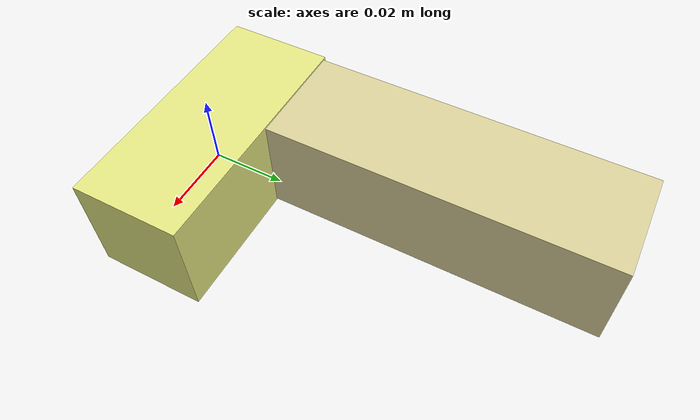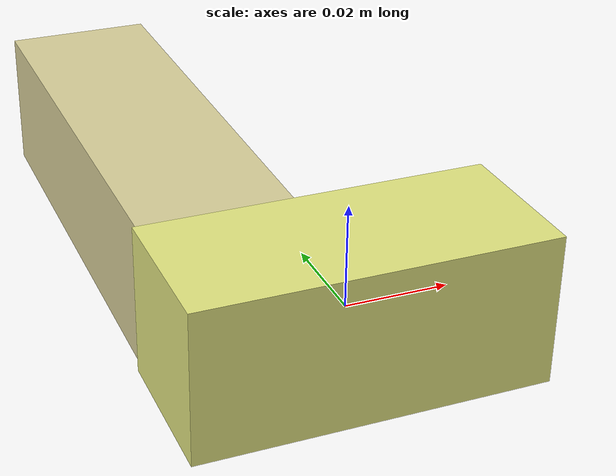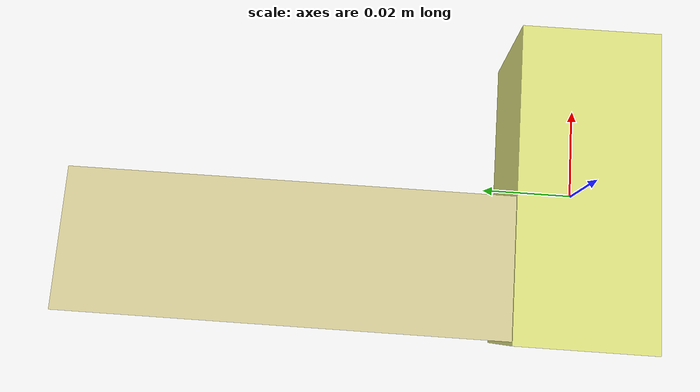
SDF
<sdf version="1.4"><world name="default"><model name="object0"><link name="link1"><pose>0 0 0 0 0 0</pose><inertial><pose>0 0 0 0 0 0</pose><mass>0.03701553642658761</mass><inertia><ixx>5.552330463988141e-06</ixx><ixy>0</ixy><iyy>1.7270002366478147e-05</iyy><ixz>0</ixz><iyz>0</iyz><izz>1.7270002366478147e-05</izz></inertia></inertial><visual name="link1_visual"><pose>0 0  0 0 0 0</pose><geometry><box><size>0.06854728967886595 0.03 0.03</size></box></geometry><material><diffuse>0.8967152891674692 0.9108557906641186 0.5101243835853013 1</diffuse></material></visual><collision><pose>0 0  0 0 0 0</pose><geometry><box><size>0.06854728967886595 0.03 0.03</size></box></geometry></collision></link><link name="link2"><pose>-0.018467951781324987 0.04992756148286478 0 0 0 0</pose><inertial><pose>0 0 0 0 0 0</pose><mass>0.06433005448581605</mass><inertia><ixx>8.058890051765705e-05</ixx><ixy>0</ixy><iyy>9.333218738317146e-06</iyy><ixz>0</ixz><iyz>0</iyz><izz>8.090518995221231e-05</izz></inertia></inertial><visual name="link2_visual"><pose>0 0  0 0 0 0</pose><geometry><box><size>0.03 0.11912973052928899 0.028999999999999998</size></box></geometry><material><diffuse>0.8601078828308317 0.8227447617247392 0.6087067066266546 1</diffuse></material></visual><collision><pose>0 0  0 0 0 0</pose><geometry><box><size>0.03 0.11912973052928899 0.028999999999999998</size></box></geometry></collision></link><joint name="link_joint_0" type="fixed"><parent>link1</parent><child>link2</child><pose>0 0 0 0 0 0</pose><axis><xyz>0 0 1</xyz></axis></joint></model></world></sdf>
